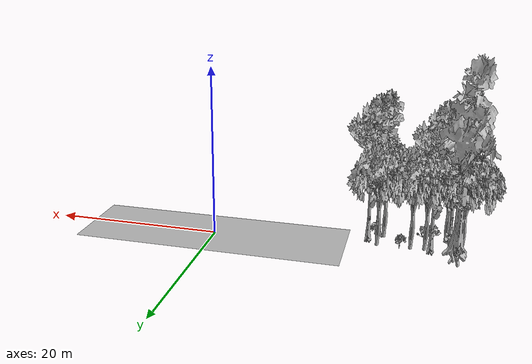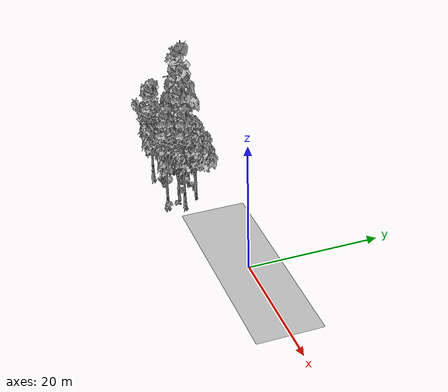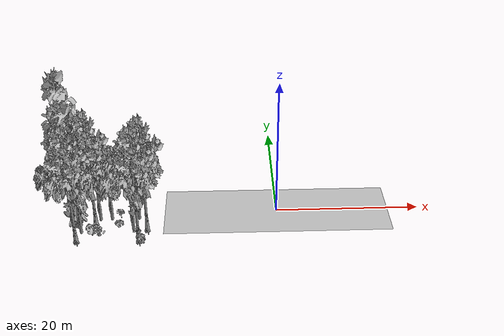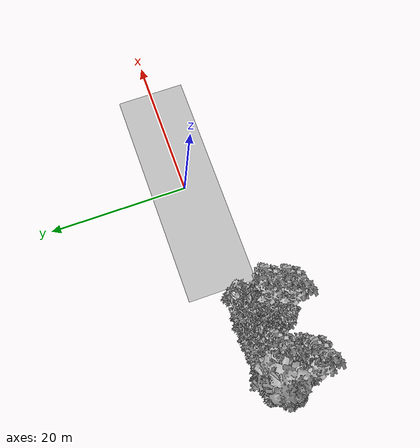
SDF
<sdf version="1.7">
 <world name="default">
  <model name="ground_plane">
   <static>1</static>
   <link name="link">
    <collision name="collision">
     <geometry><plane><normal>0 0 1</normal><size>100 100</size></plane></geometry>
     <surface><contact><ode><min_depth>0.01</min_depth><max_vel>0</max_vel></ode></contact></surface>
    </collision>
    <visual name="grass">
     <cast_shadows>0</cast_shadows>
     <geometry>
      <mesh>
       <scale>0.5814285714285714 0.18142857142857144 0.1</scale>
       <uri>file://grass_plane/meshes/grass_plane.dae</uri>
      </mesh>
     </geometry>
    </visual>
   </link>
  </model>
  <model name="Tree 0">
   <static>1</static>
   <pose>-27.916679947603246 -0.864334923967558 0 1.57079 -0 0</pose>
   <link name="link">
    <collision name="collision">
     <geometry><mesh><scale>3.5 5 3.5</scale><uri>model://tree_4/meshes/tree_4.obj</uri></mesh></geometry>
    </collision>
    <visual name="visual">
     <geometry><mesh><scale>3.5 5 3.5</scale><uri>model://tree_4/meshes/tree_4.obj</uri></mesh></geometry>
    </visual>
   </link>
  </model>
  <model name="Tree 9">
   <static>1</static>
   <pose>-26.89335764749784 -4.330637260092631 0 1.57079 -0 0</pose>
   <link name="link">
    <collision name="collision">
     <geometry><mesh><scale>3.5 5 3.5</scale><uri>model://tree_2/meshes/tree_2.obj</uri></mesh></geometry>
    </collision>
    <visual name="visual">
     <geometry><mesh><scale>3.5 5 3.5</scale><uri>model://tree_2/meshes/tree_2.obj</uri></mesh></geometry>
    </visual>
   </link>
  </model>
  <model name="Tree 101">
   <static>1</static>
   <pose>-25.134311445630964 -2.0326221464500467 0 1.57079 -0 0</pose>
   <link name="link">
    <collision name="collision">
     <geometry><mesh><scale>3.5 5 3.5</scale><uri>model://tree_9/meshes/tree_9.obj</uri></mesh></geometry>
    </collision>
    <visual name="visual">
     <geometry><mesh><scale>3.5 5 3.5</scale><uri>model://tree_9/meshes/tree_9.obj</uri></mesh></geometry>
    </visual>
   </link>
  </model>
  <model name="Tree 102">
   <static>1</static>
   <pose>-17.93077752677189 -3.6218202781559974 0 1.57079 -0 0</pose>
   <link name="link">
    <collision name="collision">
     <geometry><mesh><scale>3.5 5 3.5</scale><uri>model://tree_9/meshes/tree_9.obj</uri></mesh></geometry>
    </collision>
    <visual name="visual">
     <geometry><mesh><scale>3.5 5 3.5</scale><uri>model://tree_9/meshes/tree_9.obj</uri></mesh></geometry>
    </visual>
   </link>
  </model>
  <model name="Tree 110">
   <static>1</static>
   <pose>-27.31903972086492 -5.864412297278065 0 1.57079 -0 0</pose>
   <link name="link">
    <collision name="collision">
     <geometry><mesh><scale>3.5 5 3.5</scale><uri>model://tree_9/meshes/tree_9.obj</uri></mesh></geometry>
    </collision>
    <visual name="visual">
     <geometry><mesh><scale>3.5 5 3.5</scale><uri>model://tree_9/meshes/tree_9.obj</uri></mesh></geometry>
    </visual>
   </link>
  </model>
  <model name="Tree 114">
   <static>1</static>
   <pose>-19.830150362554647 -3.973365391406963 0 1.57079 -0 0</pose>
   <link name="link">
    <collision name="collision">
     <geometry><mesh><scale>3.5 5 3.5</scale><uri>model://tree_2/meshes/tree_2.obj</uri></mesh></geometry>
    </collision>
    <visual name="visual">
     <geometry><mesh><scale>3.5 5 3.5</scale><uri>model://tree_2/meshes/tree_2.obj</uri></mesh></geometry>
    </visual>
   </link>
  </model>
  <model name="Tree 167">
   <static>1</static>
   <pose>-24.573259746888766 -1.5741886468977953 0 1.57079 -0 0</pose>
   <link name="link">
    <collision name="collision">
     <geometry><mesh><scale>3.5 5 3.5</scale><uri>model://tree_2/meshes/tree_2.obj</uri></mesh></geometry>
    </collision>
    <visual name="visual">
     <geometry><mesh><scale>3.5 5 3.5</scale><uri>model://tree_2/meshes/tree_2.obj</uri></mesh></geometry>
    </visual>
   </link>
  </model>
  <model name="Tree 303">
   <static>1</static>
   <pose>-28.40978638349599 -1.8790150401680776 0 1.57079 -0 0</pose>
   <link name="link">
    <collision name="collision">
     <geometry><mesh><scale>3.5 5 3.5</scale><uri>model://tree_2/meshes/tree_2.obj</uri></mesh></geometry>
    </collision>
    <visual name="visual">
     <geometry><mesh><scale>3.5 5 3.5</scale><uri>model://tree_2/meshes/tree_2.obj</uri></mesh></geometry>
    </visual>
   </link>
  </model>
  <model name="Tree 328">
   <static>1</static>
   <pose>-18.89623825653432 -6.070683031395861 0 1.57079 -0 0</pose>
   <link name="link">
    <collision name="collision">
     <geometry><mesh><scale>3.5 5 3.5</scale><uri>model://tree_9/meshes/tree_9.obj</uri></mesh></geometry>
    </collision>
    <visual name="visual">
     <geometry><mesh><scale>3.5 5 3.5</scale><uri>model://tree_9/meshes/tree_9.obj</uri></mesh></geometry>
    </visual>
   </link>
  </model>
  <model name="Tree 360">
   <static>1</static>
   <pose>-23.00671271990264 -1.4662228214108133 0 1.57079 -0 0</pose>
   <link name="link">
    <collision name="collision">
     <geometry><mesh><scale>3.5 5 3.5</scale><uri>model://tree_2/meshes/tree_2.obj</uri></mesh></geometry>
    </collision>
    <visual name="visual">
     <geometry><mesh><scale>3.5 5 3.5</scale><uri>model://tree_2/meshes/tree_2.obj</uri></mesh></geometry>
    </visual>
   </link>
  </model>
  <model name="Tree 361">
   <static>1</static>
   <pose>-28.565321848769084 -1.6822546115556403 0 1.57079 -0 0</pose>
   <link name="link">
    <collision name="collision">
     <geometry><mesh><scale>3.5 5 3.5</scale><uri>model://tree_2/meshes/tree_2.obj</uri></mesh></geometry>
    </collision>
    <visual name="visual">
     <geometry><mesh><scale>3.5 5 3.5</scale><uri>model://tree_2/meshes/tree_2.obj</uri></mesh></geometry>
    </visual>
   </link>
  </model>
  <model name="Tree 415">
   <static>1</static>
   <pose>-19.248590483725508 -1.4515870748782351 0 1.57079 -0 0</pose>
   <link name="link">
    <collision name="collision">
     <geometry><mesh><scale>3.5 5 3.5</scale><uri>model://tree_2/meshes/tree_2.obj</uri></mesh></geometry>
    </collision>
    <visual name="visual">
     <geometry><mesh><scale>3.5 5 3.5</scale><uri>model://tree_2/meshes/tree_2.obj</uri></mesh></geometry>
    </visual>
   </link>
  </model>
  <model name="Bush 28">
   <static>1</static>
   <pose>-21.742249092497744 -2.8794585319182975 0 1.57079 -0 0</pose>
   <link name="link">
    <collision name="collision">
     <geometry><mesh><scale>2 2 2</scale><uri>model://bush_3/meshes/bush_3.obj</uri></mesh></geometry>
     <surface><contact><collide_without_contact>false</collide_without_contact></contact></surface>
    </collision>
    <visual name="visual">
     <geometry><mesh><scale>2 2 2</scale><uri>model://bush_3/meshes/bush_3.obj</uri></mesh></geometry>
    </visual>
   </link>
  </model>
  <model name="Bush 108">
   <static>1</static>
   <pose>-18.5436506722595 -6.254353172222615 0 1.57079 -0 0</pose>
   <link name="link">
    <collision name="collision">
     <geometry><mesh><scale>2 2 2</scale><uri>model://bush_2/meshes/bush_2.obj</uri></mesh></geometry>
     <surface><contact><collide_without_contact>false</collide_without_contact></contact></surface>
    </collision>
    <visual name="visual">
     <geometry><mesh><scale>2 2 2</scale><uri>model://bush_2/meshes/bush_2.obj</uri></mesh></geometry>
    </visual>
   </link>
  </model>
  <model name="Bush 122">
   <static>1</static>
   <pose>-27.696366102582903 -2.737524736906284 0 1.57079 -0 0</pose>
   <link name="link">
    <collision name="collision">
     <geometry><mesh><scale>2 2 2</scale><uri>model://bush_2/meshes/bush_2.obj</uri></mesh></geometry>
     <surface><contact><collide_without_contact>false</collide_without_contact></contact></surface>
    </collision>
    <visual name="visual">
     <geometry><mesh><scale>2 2 2</scale><uri>model://bush_2/meshes/bush_2.obj</uri></mesh></geometry>
    </visual>
   </link>
  </model>
  <model name="Bush 128">
   <static>1</static>
   <pose>-27.100767310370678 -3.300524299359047 0 1.57079 -0 0</pose>
   <link name="link">
    <collision name="collision">
     <geometry><mesh><scale>2 2 2</scale><uri>model://bush_0/meshes/bush_0.obj</uri></mesh></geometry>
     <surface><contact><collide_without_contact>false</collide_without_contact></contact></surface>
    </collision>
    <visual name="visual">
     <geometry><mesh><scale>2 2 2</scale><uri>model://bush_0/meshes/bush_0.obj</uri></mesh></geometry>
    </visual>
   </link>
  </model>
  <model name="Bush 181">
   <static>1</static>
   <pose>-25.250589666259582 -4.945738093427449 0 1.57079 -0 0</pose>
   <link name="link">
    <collision name="collision">
     <geometry><mesh><scale>2 2 2</scale><uri>model://bush_1/meshes/bush_1.obj</uri></mesh></geometry>
     <surface><contact><collide_without_contact>false</collide_without_contact></contact></surface>
    </collision>
    <visual name="visual">
     <geometry><mesh><scale>2 2 2</scale><uri>model://bush_1/meshes/bush_1.obj</uri></mesh></geometry>
    </visual>
   </link>
  </model>
  <model name="Bush 209">
   <static>1</static>
   <pose>-18.63749507196922 -5.906718099285687 0 1.57079 -0 0</pose>
   <link name="link">
    <collision name="collision">
     <geometry><mesh><scale>2 2 2</scale><uri>model://bush_3/meshes/bush_3.obj</uri></mesh></geometry>
     <surface><contact><collide_without_contact>false</collide_without_contact></contact></surface>
    </collision>
    <visual name="visual">
     <geometry><mesh><scale>2 2 2</scale><uri>model://bush_3/meshes/bush_3.obj</uri></mesh></geometry>
    </visual>
   </link>
  </model>
  <model name="Bush 216">
   <static>1</static>
   <pose>-19.257868331795873 -4.402987372736643 0 1.57079 -0 0</pose>
   <link name="link">
    <collision name="collision">
     <geometry><mesh><scale>2 2 2</scale><uri>model://bush_2/meshes/bush_2.obj</uri></mesh></geometry>
     <surface><contact><collide_without_contact>false</collide_without_contact></contact></surface>
    </collision>
    <visual name="visual">
     <geometry><mesh><scale>2 2 2</scale><uri>model://bush_2/meshes/bush_2.obj</uri></mesh></geometry>
    </visual>
   </link>
  </model>
  <model name="Bush 218">
   <static>1</static>
   <pose>-21.688939930427114 -1.1156039594754716 0 1.57079 -0 0</pose>
   <link name="link">
    <collision name="collision">
     <geometry><mesh><scale>2 2 2</scale><uri>model://bush_5/meshes/bush_5.obj</uri></mesh></geometry>
     <surface><contact><collide_without_contact>false</collide_without_contact></contact></surface>
    </collision>
    <visual name="visual">
     <geometry><mesh><scale>2 2 2</scale><uri>model://bush_5/meshes/bush_5.obj</uri></mesh></geometry>
    </visual>
   </link>
  </model>
  <model name="Bush 228">
   <static>1</static>
   <pose>-24.285068498026902 -5.042311070364068 0 1.57079 -0 0</pose>
   <link name="link">
    <collision name="collision">
     <geometry><mesh><scale>2 2 2</scale><uri>model://bush_4/meshes/bush_4.obj</uri></mesh></geometry>
     <surface><contact><collide_without_contact>false</collide_without_contact></contact></surface>
    </collision>
    <visual name="visual">
     <geometry><mesh><scale>2 2 2</scale><uri>model://bush_4/meshes/bush_4.obj</uri></mesh></geometry>
    </visual>
   </link>
  </model>
  <model name="Bush 244">
   <static>1</static>
   <pose>-28.068896775068385 0.4408617860388411 0 1.57079 -0 0</pose>
   <link name="link">
    <collision name="collision">
     <geometry><mesh><scale>2 2 2</scale><uri>model://bush_5/meshes/bush_5.obj</uri></mesh></geometry>
     <surface><contact><collide_without_contact>false</collide_without_contact></contact></surface>
    </collision>
    <visual name="visual">
     <geometry><mesh><scale>2 2 2</scale><uri>model://bush_5/meshes/bush_5.obj</uri></mesh></geometry>
    </visual>
   </link>
  </model>
 </world>
</sdf>
